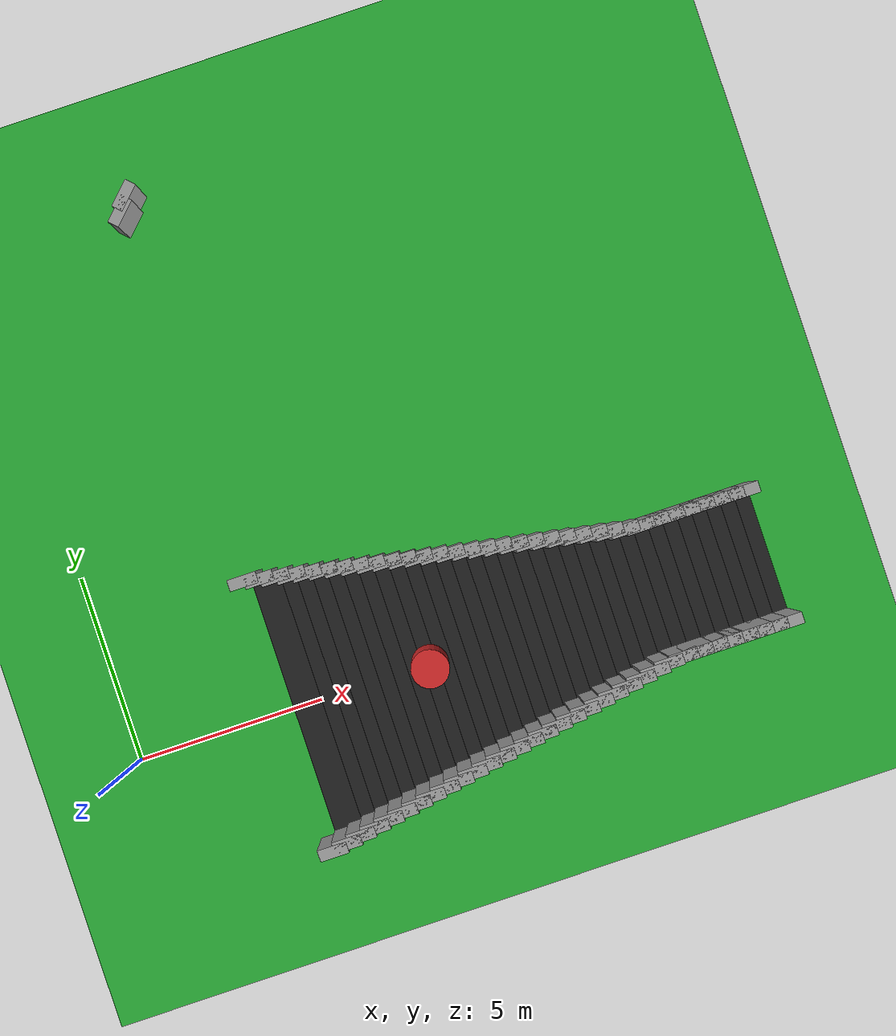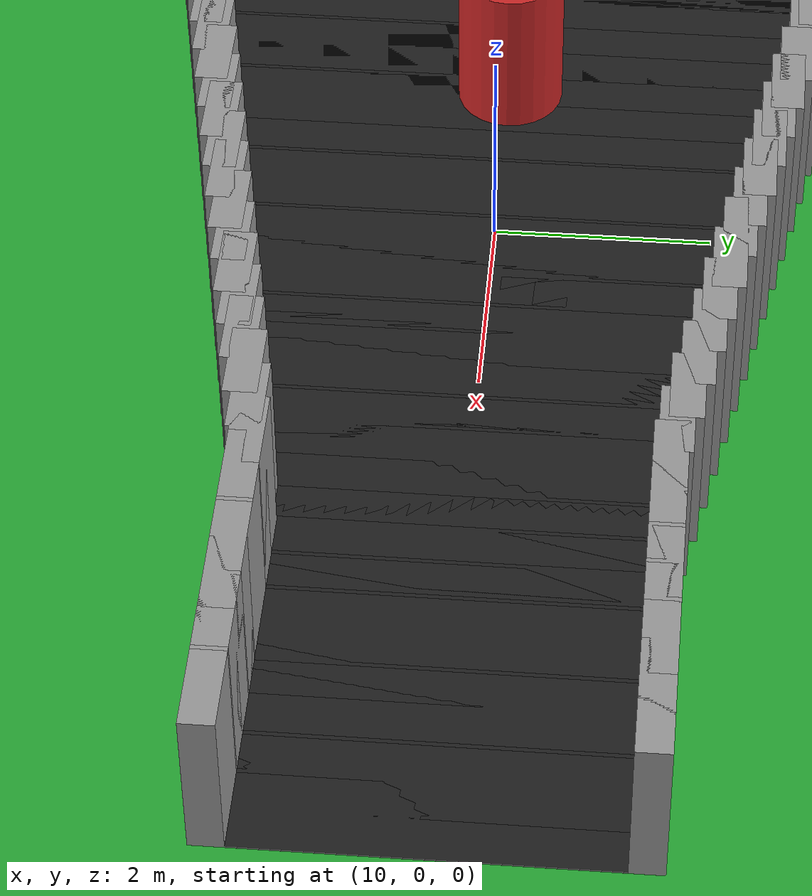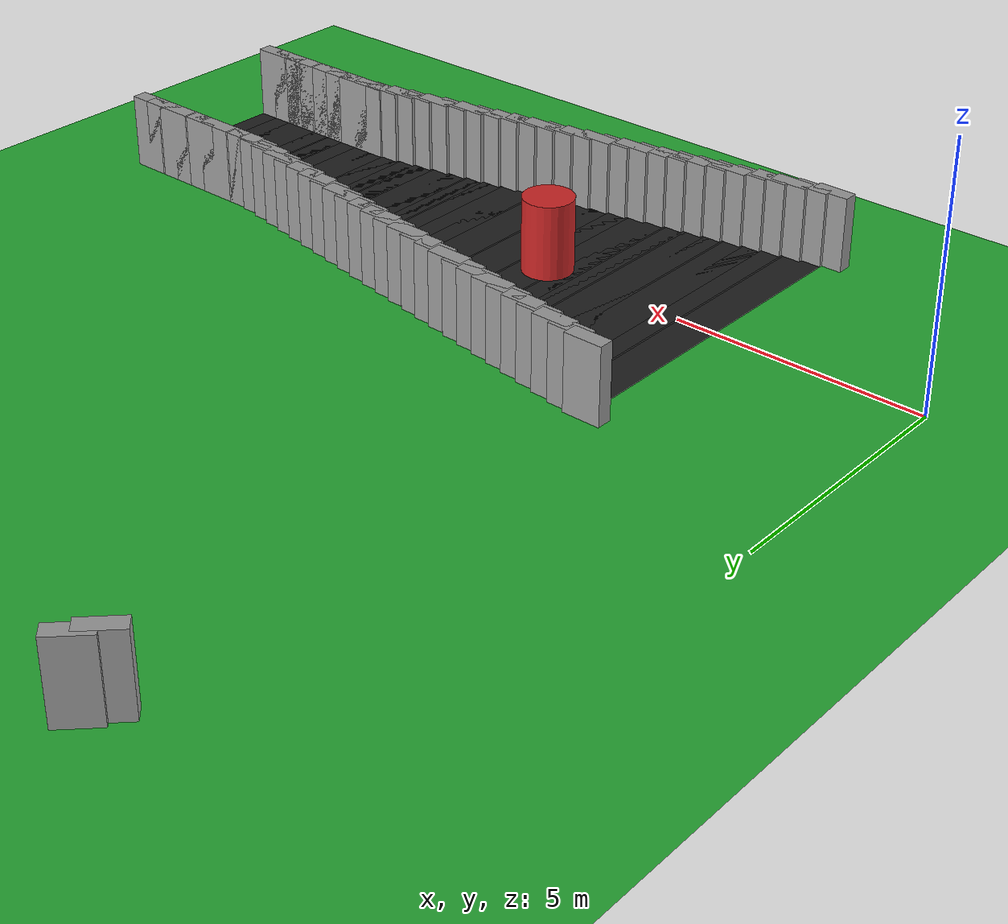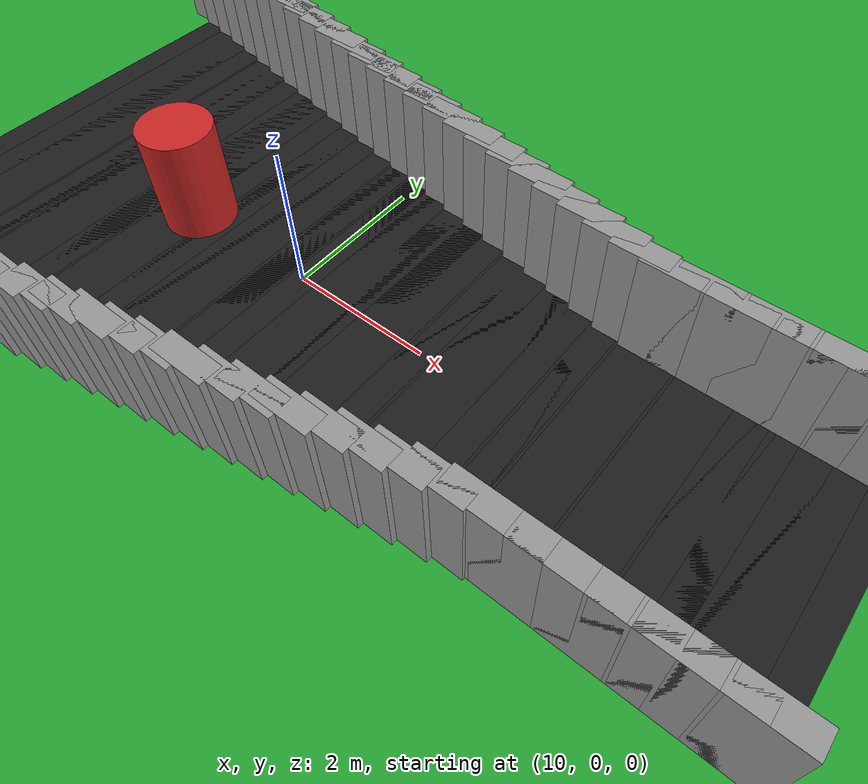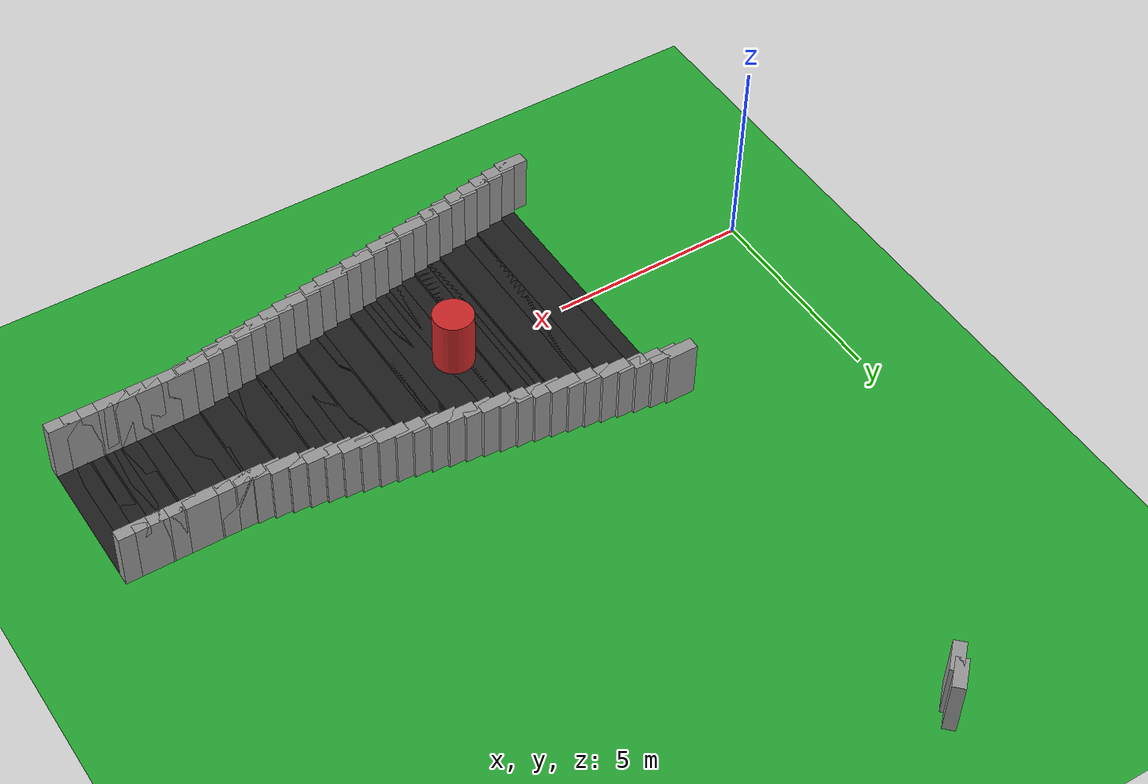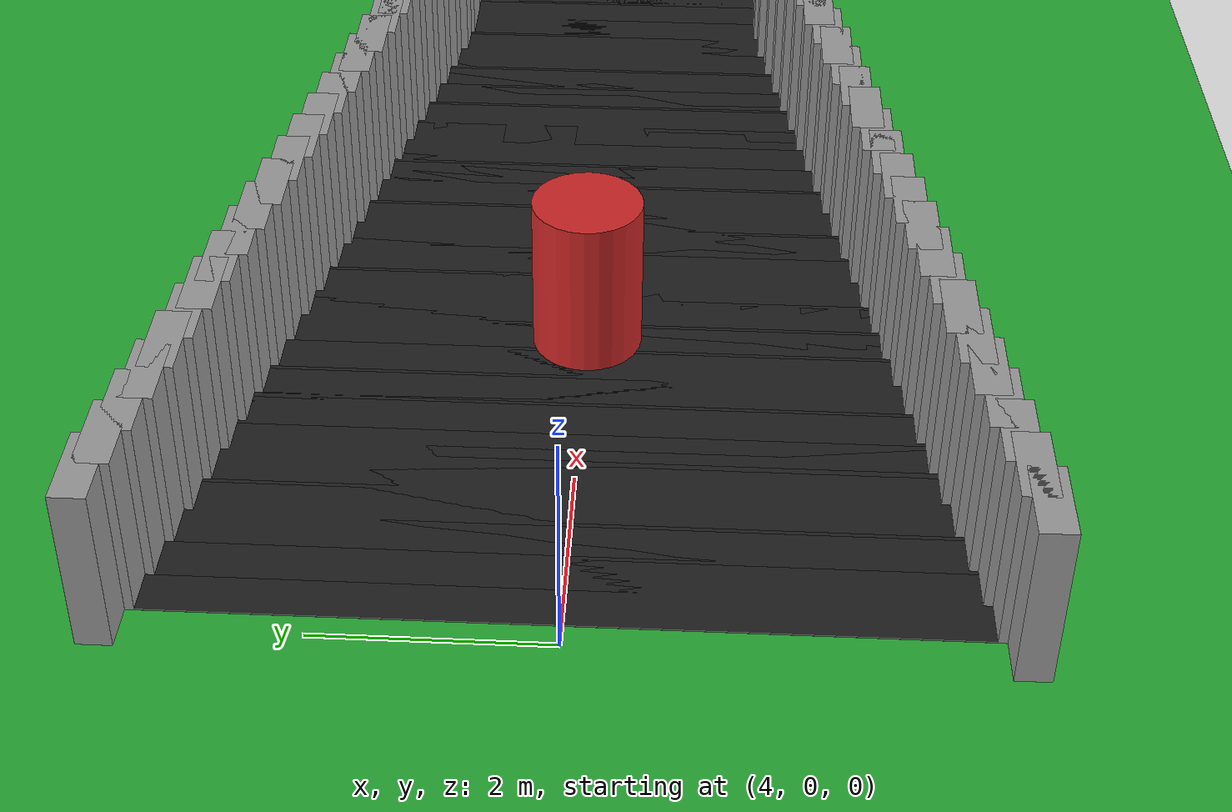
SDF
<sdf version="1.6">
 <world name="obstacle_taper">
  <include><uri>model://sun</uri></include>
  <model name="ground_plane">
   <static>true</static>
   <link name="link">
    <collision name="collision">
     <surface><friction><ode><mu>100</mu><mu2>50</mu2></ode></friction></surface>
     <geometry><plane><normal>0 0 1</normal><size>120 120</size></plane></geometry>
    </collision>
    <visual name="visual">
     <geometry><plane><normal>0 0 1</normal><size>120 120</size></plane></geometry>
     <material>
      <script><uri>file://media/materials/scripts/gazebo.material</uri><name>Gazebo/Green</name></script>
     </material>
    </visual>
   </link>
  </model>
  <model name="curbL_10">
   <static>true</static>
   <pose>4.200 3.612 0.750 0 0 0.00000</pose>
   <link name="link">
    <collision name="collision"><geometry><box><size>0.760 0.300 1.500</size></box></geometry></collision>
    <visual name="visual">
     <geometry><box><size>0.760 0.300 1.500</size></box></geometry>
     <material>
      <script><uri>file://media/materials/scripts/gazebo.material</uri><name>Gazebo/Grey</name></script>
     </material>
    </visual>
   </link>
  </model>
  <model name="curbR_10">
   <static>true</static>
   <pose>4.200 -3.612 0.750 0 0 0.00000</pose>
   <link name="link">
    <collision name="collision"><geometry><box><size>0.760 0.300 1.500</size></box></geometry></collision>
    <visual name="visual">
     <geometry><box><size>0.760 0.300 1.500</size></box></geometry>
     <material>
      <script><uri>file://media/materials/scripts/gazebo.material</uri><name>Gazebo/Grey</name></script>
     </material>
    </visual>
   </link>
  </model>
  <model name="asphalt_11">
   <static>true</static>
   <pose>4.600 0.000 0.005 0 0 0.00000</pose>
   <link name="link">
    <visual name="visual">
     <geometry><box><size>0.760 6.772 0.010</size></box></geometry>
     <material>
      <script><uri>file://media/materials/scripts/gazebo.material</uri><name>Gazebo/Black</name></script>
     </material>
    </visual>
   </link>
  </model>
  <model name="curbL_11">
   <static>true</static>
   <pose>4.600 3.536 0.750 0 0 0.00000</pose>
   <link name="link">
    <collision name="collision"><geometry><box><size>0.760 0.300 1.500</size></box></geometry></collision>
    <visual name="visual">
     <geometry><box><size>0.760 0.300 1.500</size></box></geometry>
     <material>
      <script><uri>file://media/materials/scripts/gazebo.material</uri><name>Gazebo/Grey</name></script>
     </material>
    </visual>
   </link>
  </model>
  <model name="curbR_11">
   <static>true</static>
   <pose>4.600 -3.536 0.750 0 0 0.00000</pose>
   <link name="link">
    <collision name="collision"><geometry><box><size>0.760 0.300 1.500</size></box></geometry></collision>
    <visual name="visual">
     <geometry><box><size>0.760 0.300 1.500</size></box></geometry>
     <material>
      <script><uri>file://media/materials/scripts/gazebo.material</uri><name>Gazebo/Grey</name></script>
     </material>
    </visual>
   </link>
  </model>
  <model name="asphalt_12">
   <static>true</static>
   <pose>5.000 0.000 0.005 0 0 0.00000</pose>
   <link name="link">
    <visual name="visual">
     <geometry><box><size>0.760 6.620 0.010</size></box></geometry>
     <material>
      <script><uri>file://media/materials/scripts/gazebo.material</uri><name>Gazebo/Black</name></script>
     </material>
    </visual>
   </link>
  </model>
  <model name="curbL_12">
   <static>true</static>
   <pose>5.000 3.460 0.750 0 0 0.00000</pose>
   <link name="link">
    <collision name="collision"><geometry><box><size>0.760 0.300 1.500</size></box></geometry></collision>
    <visual name="visual">
     <geometry><box><size>0.760 0.300 1.500</size></box></geometry>
     <material>
      <script><uri>file://media/materials/scripts/gazebo.material</uri><name>Gazebo/Grey</name></script>
     </material>
    </visual>
   </link>
  </model>
  <model name="curbR_12">
   <static>true</static>
   <pose>5.000 -3.460 0.750 0 0 0.00000</pose>
   <link name="link">
    <collision name="collision"><geometry><box><size>0.760 0.300 1.500</size></box></geometry></collision>
    <visual name="visual">
     <geometry><box><size>0.760 0.300 1.500</size></box></geometry>
     <material>
      <script><uri>file://media/materials/scripts/gazebo.material</uri><name>Gazebo/Grey</name></script>
     </material>
    </visual>
   </link>
  </model>
  <model name="asphalt_13">
   <static>true</static>
   <pose>5.400 0.000 0.005 0 0 0.00000</pose>
   <link name="link">
    <visual name="visual">
     <geometry><box><size>0.760 6.468 0.010</size></box></geometry>
     <material>
      <script><uri>file://media/materials/scripts/gazebo.material</uri><name>Gazebo/Black</name></script>
     </material>
    </visual>
   </link>
  </model>
  <model name="curbL_13">
   <static>true</static>
   <pose>5.400 3.384 0.750 0 0 0.00000</pose>
   <link name="link">
    <collision name="collision"><geometry><box><size>0.760 0.300 1.500</size></box></geometry></collision>
    <visual name="visual">
     <geometry><box><size>0.760 0.300 1.500</size></box></geometry>
     <material>
      <script><uri>file://media/materials/scripts/gazebo.material</uri><name>Gazebo/Grey</name></script>
     </material>
    </visual>
   </link>
  </model>
  <model name="curbR_13">
   <static>true</static>
   <pose>5.400 -3.384 0.750 0 0 0.00000</pose>
   <link name="link">
    <collision name="collision"><geometry><box><size>0.760 0.300 1.500</size></box></geometry></collision>
    <visual name="visual">
     <geometry><box><size>0.760 0.300 1.500</size></box></geometry>
     <material>
      <script><uri>file://media/materials/scripts/gazebo.material</uri><name>Gazebo/Grey</name></script>
     </material>
    </visual>
   </link>
  </model>
  <model name="asphalt_14">
   <static>true</static>
   <pose>5.800 0.000 0.005 0 0 0.00000</pose>
   <link name="link">
    <visual name="visual">
     <geometry><box><size>0.760 6.316 0.010</size></box></geometry>
     <material>
      <script><uri>file://media/materials/scripts/gazebo.material</uri><name>Gazebo/Black</name></script>
     </material>
    </visual>
   </link>
  </model>
  <model name="curbL_14">
   <static>true</static>
   <pose>5.800 3.308 0.750 0 0 0.00000</pose>
   <link name="link">
    <collision name="collision"><geometry><box><size>0.760 0.300 1.500</size></box></geometry></collision>
    <visual name="visual">
     <geometry><box><size>0.760 0.300 1.500</size></box></geometry>
     <material>
      <script><uri>file://media/materials/scripts/gazebo.material</uri><name>Gazebo/Grey</name></script>
     </material>
    </visual>
   </link>
  </model>
  <model name="curbR_14">
   <static>true</static>
   <pose>5.800 -3.308 0.750 0 0 0.00000</pose>
   <link name="link">
    <collision name="collision"><geometry><box><size>0.760 0.300 1.500</size></box></geometry></collision>
    <visual name="visual">
     <geometry><box><size>0.760 0.300 1.500</size></box></geometry>
     <material>
      <script><uri>file://media/materials/scripts/gazebo.material</uri><name>Gazebo/Grey</name></script>
     </material>
    </visual>
   </link>
  </model>
  <model name="asphalt_15">
   <static>true</static>
   <pose>6.200 0.000 0.005 0 0 0.00000</pose>
   <link name="link">
    <visual name="visual">
     <geometry><box><size>0.760 6.164 0.010</size></box></geometry>
     <material>
      <script><uri>file://media/materials/scripts/gazebo.material</uri><name>Gazebo/Black</name></script>
     </material>
    </visual>
   </link>
  </model>
  <model name="curbL_15">
   <static>true</static>
   <pose>6.200 3.232 0.750 0 0 0.00000</pose>
   <link name="link">
    <collision name="collision"><geometry><box><size>0.760 0.300 1.500</size></box></geometry></collision>
    <visual name="visual">
     <geometry><box><size>0.760 0.300 1.500</size></box></geometry>
     <material>
      <script><uri>file://media/materials/scripts/gazebo.material</uri><name>Gazebo/Grey</name></script>
     </material>
    </visual>
   </link>
  </model>
  <model name="curbR_15">
   <static>true</static>
   <pose>6.200 -3.232 0.750 0 0 0.00000</pose>
   <link name="link">
    <collision name="collision"><geometry><box><size>0.760 0.300 1.500</size></box></geometry></collision>
    <visual name="visual">
     <geometry><box><size>0.760 0.300 1.500</size></box></geometry>
     <material>
      <script><uri>file://media/materials/scripts/gazebo.material</uri><name>Gazebo/Grey</name></script>
     </material>
    </visual>
   </link>
  </model>
  <model name="asphalt_16">
   <static>true</static>
   <pose>6.600 0.000 0.005 0 0 0.00000</pose>
   <link name="link">
    <visual name="visual">
     <geometry><box><size>0.760 6.012 0.010</size></box></geometry>
     <material>
      <script><uri>file://media/materials/scripts/gazebo.material</uri><name>Gazebo/Black</name></script>
     </material>
    </visual>
   </link>
  </model>
  <model name="curbL_16">
   <static>true</static>
   <pose>6.600 3.156 0.750 0 0 0.00000</pose>
   <link name="link">
    <collision name="collision"><geometry><box><size>0.760 0.300 1.500</size></box></geometry></collision>
    <visual name="visual">
     <geometry><box><size>0.760 0.300 1.500</size></box></geometry>
     <material>
      <script><uri>file://media/materials/scripts/gazebo.material</uri><name>Gazebo/Grey</name></script>
     </material>
    </visual>
   </link>
  </model>
  <model name="curbR_16">
   <static>true</static>
   <pose>6.600 -3.156 0.750 0 0 0.00000</pose>
   <link name="link">
    <collision name="collision"><geometry><box><size>0.760 0.300 1.500</size></box></geometry></collision>
    <visual name="visual">
     <geometry><box><size>0.760 0.300 1.500</size></box></geometry>
     <material>
      <script><uri>file://media/materials/scripts/gazebo.material</uri><name>Gazebo/Grey</name></script>
     </material>
    </visual>
   </link>
  </model>
  <model name="asphalt_17">
   <static>true</static>
   <pose>7.000 0.000 0.005 0 0 0.00000</pose>
   <link name="link">
    <visual name="visual">
     <geometry><box><size>0.760 5.860 0.010</size></box></geometry>
     <material>
      <script><uri>file://media/materials/scripts/gazebo.material</uri><name>Gazebo/Black</name></script>
     </material>
    </visual>
   </link>
  </model>
  <model name="curbL_17">
   <static>true</static>
   <pose>7.000 3.080 0.750 0 0 0.00000</pose>
   <link name="link">
    <collision name="collision"><geometry><box><size>0.760 0.300 1.500</size></box></geometry></collision>
    <visual name="visual">
     <geometry><box><size>0.760 0.300 1.500</size></box></geometry>
     <material>
      <script><uri>file://media/materials/scripts/gazebo.material</uri><name>Gazebo/Grey</name></script>
     </material>
    </visual>
   </link>
  </model>
  <model name="curbR_17">
   <static>true</static>
   <pose>7.000 -3.080 0.750 0 0 0.00000</pose>
   <link name="link">
    <collision name="collision"><geometry><box><size>0.760 0.300 1.500</size></box></geometry></collision>
    <visual name="visual">
     <geometry><box><size>0.760 0.300 1.500</size></box></geometry>
     <material>
      <script><uri>file://media/materials/scripts/gazebo.material</uri><name>Gazebo/Grey</name></script>
     </material>
    </visual>
   </link>
  </model>
  <model name="asphalt_18">
   <static>true</static>
   <pose>7.400 0.000 0.005 0 0 0.00000</pose>
   <link name="link">
    <visual name="visual">
     <geometry><box><size>0.760 5.708 0.010</size></box></geometry>
     <material>
      <script><uri>file://media/materials/scripts/gazebo.material</uri><name>Gazebo/Black</name></script>
     </material>
    </visual>
   </link>
  </model>
  <model name="curbL_18">
   <static>true</static>
   <pose>7.400 3.004 0.750 0 0 0.00000</pose>
   <link name="link">
    <collision name="collision"><geometry><box><size>0.760 0.300 1.500</size></box></geometry></collision>
    <visual name="visual">
     <geometry><box><size>0.760 0.300 1.500</size></box></geometry>
     <material>
      <script><uri>file://media/materials/scripts/gazebo.material</uri><name>Gazebo/Grey</name></script>
     </material>
    </visual>
   </link>
  </model>
  <model name="curbR_18">
   <static>true</static>
   <pose>7.400 -3.004 0.750 0 0 0.00000</pose>
   <link name="link">
    <collision name="collision"><geometry><box><size>0.760 0.300 1.500</size></box></geometry></collision>
    <visual name="visual">
     <geometry><box><size>0.760 0.300 1.500</size></box></geometry>
     <material>
      <script><uri>file://media/materials/scripts/gazebo.material</uri><name>Gazebo/Grey</name></script>
     </material>
    </visual>
   </link>
  </model>
  <model name="asphalt_19">
   <static>true</static>
   <pose>7.800 0.000 0.005 0 0 0.00000</pose>
   <link name="link">
    <visual name="visual">
     <geometry><box><size>0.760 5.556 0.010</size></box></geometry>
     <material>
      <script><uri>file://media/materials/scripts/gazebo.material</uri><name>Gazebo/Black</name></script>
     </material>
    </visual>
   </link>
  </model>
  <model name="curbL_19">
   <static>true</static>
   <pose>7.800 2.928 0.750 0 0 0.00000</pose>
   <link name="link">
    <collision name="collision"><geometry><box><size>0.760 0.300 1.500</size></box></geometry></collision>
    <visual name="visual">
     <geometry><box><size>0.760 0.300 1.500</size></box></geometry>
     <material>
      <script><uri>file://media/materials/scripts/gazebo.material</uri><name>Gazebo/Grey</name></script>
     </material>
    </visual>
   </link>
  </model>
  <model name="curbR_19">
   <static>true</static>
   <pose>7.800 -2.928 0.750 0 0 0.00000</pose>
   <link name="link">
    <collision name="collision"><geometry><box><size>0.760 0.300 1.500</size></box></geometry></collision>
    <visual name="visual">
     <geometry><box><size>0.760 0.300 1.500</size></box></geometry>
     <material>
      <script><uri>file://media/materials/scripts/gazebo.material</uri><name>Gazebo/Grey</name></script>
     </material>
    </visual>
   </link>
  </model>
  <model name="asphalt_20">
   <static>true</static>
   <pose>8.200 0.000 0.005 0 0 0.00000</pose>
   <link name="link">
    <visual name="visual">
     <geometry><box><size>0.760 5.404 0.010</size></box></geometry>
     <material>
      <script><uri>file://media/materials/scripts/gazebo.material</uri><name>Gazebo/Black</name></script>
     </material>
    </visual>
   </link>
  </model>
  <model name="curbL_20">
   <static>true</static>
   <pose>8.200 2.852 0.750 0 0 0.00000</pose>
   <link name="link">
    <collision name="collision"><geometry><box><size>0.760 0.300 1.500</size></box></geometry></collision>
    <visual name="visual">
     <geometry><box><size>0.760 0.300 1.500</size></box></geometry>
     <material>
      <script><uri>file://media/materials/scripts/gazebo.material</uri><name>Gazebo/Grey</name></script>
     </material>
    </visual>
   </link>
  </model>
  <model name="curbR_20">
   <static>true</static>
   <pose>8.200 -2.852 0.750 0 0 0.00000</pose>
   <link name="link">
    <collision name="collision"><geometry><box><size>0.760 0.300 1.500</size></box></geometry></collision>
    <visual name="visual">
     <geometry><box><size>0.760 0.300 1.500</size></box></geometry>
     <material>
      <script><uri>file://media/materials/scripts/gazebo.material</uri><name>Gazebo/Grey</name></script>
     </material>
    </visual>
   </link>
  </model>
  <model name="asphalt_21">
   <static>true</static>
   <pose>8.600 0.000 0.005 0 0 0.00000</pose>
   <link name="link">
    <visual name="visual">
     <geometry><box><size>0.760 5.252 0.010</size></box></geometry>
     <material>
      <script><uri>file://media/materials/scripts/gazebo.material</uri><name>Gazebo/Black</name></script>
     </material>
    </visual>
   </link>
  </model>
  <model name="curbL_21">
   <static>true</static>
   <pose>8.600 2.776 0.750 0 0 0.00000</pose>
   <link name="link">
    <collision name="collision"><geometry><box><size>0.760 0.300 1.500</size></box></geometry></collision>
    <visual name="visual">
     <geometry><box><size>0.760 0.300 1.500</size></box></geometry>
     <material>
      <script><uri>file://media/materials/scripts/gazebo.material</uri><name>Gazebo/Grey</name></script>
     </material>
    </visual>
   </link>
  </model>
  <model name="curbR_21">
   <static>true</static>
   <pose>8.600 -2.776 0.750 0 0 0.00000</pose>
   <link name="link">
    <collision name="collision"><geometry><box><size>0.760 0.300 1.500</size></box></geometry></collision>
    <visual name="visual">
     <geometry><box><size>0.760 0.300 1.500</size></box></geometry>
     <material>
      <script><uri>file://media/materials/scripts/gazebo.material</uri><name>Gazebo/Grey</name></script>
     </material>
    </visual>
   </link>
  </model>
  <model name="asphalt_22">
   <static>true</static>
   <pose>9.000 0.000 0.005 0 0 0.00000</pose>
   <link name="link">
    <visual name="visual">
     <geometry><box><size>0.760 5.100 0.010</size></box></geometry>
     <material>
      <script><uri>file://media/materials/scripts/gazebo.material</uri><name>Gazebo/Black</name></script>
     </material>
    </visual>
   </link>
  </model>
  <model name="curbL_22">
   <static>true</static>
   <pose>9.000 2.700 0.750 0 0 0.00000</pose>
   <link name="link">
    <collision name="collision"><geometry><box><size>0.760 0.300 1.500</size></box></geometry></collision>
    <visual name="visual">
     <geometry><box><size>0.760 0.300 1.500</size></box></geometry>
     <material>
      <script><uri>file://media/materials/scripts/gazebo.material</uri><name>Gazebo/Grey</name></script>
     </material>
    </visual>
   </link>
  </model>
  <model name="curbR_22">
   <static>true</static>
   <pose>9.000 -2.700 0.750 0 0 0.00000</pose>
   <link name="link">
    <collision name="collision"><geometry><box><size>0.760 0.300 1.500</size></box></geometry></collision>
    <visual name="visual">
     <geometry><box><size>0.760 0.300 1.500</size></box></geometry>
     <material>
      <script><uri>file://media/materials/scripts/gazebo.material</uri><name>Gazebo/Grey</name></script>
     </material>
    </visual>
   </link>
  </model>
  <model name="asphalt_23">
   <static>true</static>
   <pose>9.400 0.000 0.005 0 0 0.00000</pose>
   <link name="link">
    <visual name="visual">
     <geometry><box><size>0.760 4.948 0.010</size></box></geometry>
     <material>
      <script><uri>file://media/materials/scripts/gazebo.material</uri><name>Gazebo/Black</name></script>
     </material>
    </visual>
   </link>
  </model>
  <model name="curbL_23">
   <static>true</static>
   <pose>9.400 2.624 0.750 0 0 0.00000</pose>
   <link name="link">
    <collision name="collision"><geometry><box><size>0.760 0.300 1.500</size></box></geometry></collision>
    <visual name="visual">
     <geometry><box><size>0.760 0.300 1.500</size></box></geometry>
     <material>
      <script><uri>file://media/materials/scripts/gazebo.material</uri><name>Gazebo/Grey</name></script>
     </material>
    </visual>
   </link>
  </model>
  <model name="curbR_23">
   <static>true</static>
   <pose>9.400 -2.624 0.750 0 0 0.00000</pose>
   <link name="link">
    <collision name="collision"><geometry><box><size>0.760 0.300 1.500</size></box></geometry></collision>
    <visual name="visual">
     <geometry><box><size>0.760 0.300 1.500</size></box></geometry>
     <material>
      <script><uri>file://media/materials/scripts/gazebo.material</uri><name>Gazebo/Grey</name></script>
     </material>
    </visual>
   </link>
  </model>
  <model name="asphalt_24">
   <static>true</static>
   <pose>9.800 0.000 0.005 0 0 0.00000</pose>
   <link name="link">
    <visual name="visual">
     <geometry><box><size>0.760 4.796 0.010</size></box></geometry>
     <material>
      <script><uri>file://media/materials/scripts/gazebo.material</uri><name>Gazebo/Black</name></script>
     </material>
    </visual>
   </link>
  </model>
  <model name="curbL_24">
   <static>true</static>
   <pose>9.800 2.548 0.750 0 0 0.00000</pose>
   <link name="link">
    <collision name="collision"><geometry><box><size>0.760 0.300 1.500</size></box></geometry></collision>
    <visual name="visual">
     <geometry><box><size>0.760 0.300 1.500</size></box></geometry>
     <material>
      <script><uri>file://media/materials/scripts/gazebo.material</uri><name>Gazebo/Grey</name></script>
     </material>
    </visual>
   </link>
  </model>
  <model name="curbR_24">
   <static>true</static>
   <pose>9.800 -2.548 0.750 0 0 0.00000</pose>
   <link name="link">
    <collision name="collision"><geometry><box><size>0.760 0.300 1.500</size></box></geometry></collision>
    <visual name="visual">
     <geometry><box><size>0.760 0.300 1.500</size></box></geometry>
     <material>
      <script><uri>file://media/materials/scripts/gazebo.material</uri><name>Gazebo/Grey</name></script>
     </material>
    </visual>
   </link>
  </model>
  <model name="asphalt_25">
   <static>true</static>
   <pose>10.200 0.000 0.005 0 0 0.00000</pose>
   <link name="link">
    <visual name="visual">
     <geometry><box><size>0.760 4.644 0.010</size></box></geometry>
     <material>
      <script><uri>file://media/materials/scripts/gazebo.material</uri><name>Gazebo/Black</name></script>
     </material>
    </visual>
   </link>
  </model>
  <model name="curbL_25">
   <static>true</static>
   <pose>10.200 2.472 0.750 0 0 0.00000</pose>
   <link name="link">
    <collision name="collision"><geometry><box><size>0.760 0.300 1.500</size></box></geometry></collision>
    <visual name="visual">
     <geometry><box><size>0.760 0.300 1.500</size></box></geometry>
     <material>
      <script><uri>file://media/materials/scripts/gazebo.material</uri><name>Gazebo/Grey</name></script>
     </material>
    </visual>
   </link>
  </model>
  <model name="curbR_25">
   <static>true</static>
   <pose>10.200 -2.472 0.750 0 0 0.00000</pose>
   <link name="link">
    <collision name="collision"><geometry><box><size>0.760 0.300 1.500</size></box></geometry></collision>
    <visual name="visual">
     <geometry><box><size>0.760 0.300 1.500</size></box></geometry>
     <material>
      <script><uri>file://media/materials/scripts/gazebo.material</uri><name>Gazebo/Grey</name></script>
     </material>
    </visual>
   </link>
  </model>
  <model name="asphalt_26">
   <static>true</static>
   <pose>10.600 0.000 0.005 0 0 0.00000</pose>
   <link name="link">
    <visual name="visual">
     <geometry><box><size>0.760 4.492 0.010</size></box></geometry>
     <material>
      <script><uri>file://media/materials/scripts/gazebo.material</uri><name>Gazebo/Black</name></script>
     </material>
    </visual>
   </link>
  </model>
  <model name="curbL_26">
   <static>true</static>
   <pose>10.600 2.396 0.750 0 0 0.00000</pose>
   <link name="link">
    <collision name="collision"><geometry><box><size>0.760 0.300 1.500</size></box></geometry></collision>
    <visual name="visual">
     <geometry><box><size>0.760 0.300 1.500</size></box></geometry>
     <material>
      <script><uri>file://media/materials/scripts/gazebo.material</uri><name>Gazebo/Grey</name></script>
     </material>
    </visual>
   </link>
  </model>
  <model name="curbR_26">
   <static>true</static>
   <pose>10.600 -2.396 0.750 0 0 0.00000</pose>
   <link name="link">
    <collision name="collision"><geometry><box><size>0.760 0.300 1.500</size></box></geometry></collision>
    <visual name="visual">
     <geometry><box><size>0.760 0.300 1.500</size></box></geometry>
     <material>
      <script><uri>file://media/materials/scripts/gazebo.material</uri><name>Gazebo/Grey</name></script>
     </material>
    </visual>
   </link>
  </model>
  <model name="asphalt_27">
   <static>true</static>
   <pose>11.000 0.000 0.005 0 0 0.00000</pose>
   <link name="link">
    <visual name="visual">
     <geometry><box><size>0.760 4.340 0.010</size></box></geometry>
     <material>
      <script><uri>file://media/materials/scripts/gazebo.material</uri><name>Gazebo/Black</name></script>
     </material>
    </visual>
   </link>
  </model>
  <model name="curbL_27">
   <static>true</static>
   <pose>11.000 2.320 0.750 0 0 0.00000</pose>
   <link name="link">
    <collision name="collision"><geometry><box><size>0.760 0.300 1.500</size></box></geometry></collision>
    <visual name="visual">
     <geometry><box><size>0.760 0.300 1.500</size></box></geometry>
     <material>
      <script><uri>file://media/materials/scripts/gazebo.material</uri><name>Gazebo/Grey</name></script>
     </material>
    </visual>
   </link>
  </model>
  <model name="curbR_27">
   <static>true</static>
   <pose>11.000 -2.320 0.750 0 0 0.00000</pose>
   <link name="link">
    <collision name="collision"><geometry><box><size>0.760 0.300 1.500</size></box></geometry></collision>
    <visual name="visual">
     <geometry><box><size>0.760 0.300 1.500</size></box></geometry>
     <material>
      <script><uri>file://media/materials/scripts/gazebo.material</uri><name>Gazebo/Grey</name></script>
     </material>
    </visual>
   </link>
  </model>
  <model name="asphalt_28">
   <static>true</static>
   <pose>11.400 0.000 0.005 0 0 0.00000</pose>
   <link name="link">
    <visual name="visual">
     <geometry><box><size>0.760 4.188 0.010</size></box></geometry>
     <material>
      <script><uri>file://media/materials/scripts/gazebo.material</uri><name>Gazebo/Black</name></script>
     </material>
    </visual>
   </link>
  </model>
  <model name="curbL_28">
   <static>true</static>
   <pose>11.400 2.244 0.750 0 0 0.00000</pose>
   <link name="link">
    <collision name="collision"><geometry><box><size>0.760 0.300 1.500</size></box></geometry></collision>
    <visual name="visual">
     <geometry><box><size>0.760 0.300 1.500</size></box></geometry>
     <material>
      <script><uri>file://media/materials/scripts/gazebo.material</uri><name>Gazebo/Grey</name></script>
     </material>
    </visual>
   </link>
  </model>
  <model name="curbR_28">
   <static>true</static>
   <pose>11.400 -2.244 0.750 0 0 0.00000</pose>
   <link name="link">
    <collision name="collision"><geometry><box><size>0.760 0.300 1.500</size></box></geometry></collision>
    <visual name="visual">
     <geometry><box><size>0.760 0.300 1.500</size></box></geometry>
     <material>
      <script><uri>file://media/materials/scripts/gazebo.material</uri><name>Gazebo/Grey</name></script>
     </material>
    </visual>
   </link>
  </model>
  <model name="asphalt_29">
   <static>true</static>
   <pose>11.800 0.000 0.005 0 0 0.00000</pose>
   <link name="link">
    <visual name="visual">
     <geometry><box><size>0.760 4.036 0.010</size></box></geometry>
     <material>
      <script><uri>file://media/materials/scripts/gazebo.material</uri><name>Gazebo/Black</name></script>
     </material>
    </visual>
   </link>
  </model>
  <model name="curbL_29">
   <static>true</static>
   <pose>11.800 2.168 0.750 0 0 0.00000</pose>
   <link name="link">
    <collision name="collision"><geometry><box><size>0.760 0.300 1.500</size></box></geometry></collision>
    <visual name="visual">
     <geometry><box><size>0.760 0.300 1.500</size></box></geometry>
     <material>
      <script><uri>file://media/materials/scripts/gazebo.material</uri><name>Gazebo/Grey</name></script>
     </material>
    </visual>
   </link>
  </model>
  <model name="curbR_29">
   <static>true</static>
   <pose>11.800 -2.168 0.750 0 0 0.00000</pose>
   <link name="link">
    <collision name="collision"><geometry><box><size>0.760 0.300 1.500</size></box></geometry></collision>
    <visual name="visual">
     <geometry><box><size>0.760 0.300 1.500</size></box></geometry>
     <material>
      <script><uri>file://media/materials/scripts/gazebo.material</uri><name>Gazebo/Grey</name></script>
     </material>
    </visual>
   </link>
  </model>
  <model name="asphalt_30">
   <static>true</static>
   <pose>12.200 0.000 0.005 0 0 0.00000</pose>
   <link name="link">
    <visual name="visual">
     <geometry><box><size>0.760 3.884 0.010</size></box></geometry>
     <material>
      <script><uri>file://media/materials/scripts/gazebo.material</uri><name>Gazebo/Black</name></script>
     </material>
    </visual>
   </link>
  </model>
  <model name="curbL_30">
   <static>true</static>
   <pose>12.200 2.092 0.750 0 0 0.00000</pose>
   <link name="link">
    <collision name="collision"><geometry><box><size>0.760 0.300 1.500</size></box></geometry></collision>
    <visual name="visual">
     <geometry><box><size>0.760 0.300 1.500</size></box></geometry>
     <material>
      <script><uri>file://media/materials/scripts/gazebo.material</uri><name>Gazebo/Grey</name></script>
     </material>
    </visual>
   </link>
  </model>
  <model name="curbR_30">
   <static>true</static>
   <pose>12.200 -2.092 0.750 0 0 0.00000</pose>
   <link name="link">
    <collision name="collision"><geometry><box><size>0.760 0.300 1.500</size></box></geometry></collision>
    <visual name="visual">
     <geometry><box><size>0.760 0.300 1.500</size></box></geometry>
     <material>
      <script><uri>file://media/materials/scripts/gazebo.material</uri><name>Gazebo/Grey</name></script>
     </material>
    </visual>
   </link>
  </model>
  <model name="asphalt_31">
   <static>true</static>
   <pose>12.600 0.000 0.005 0 0 0.00000</pose>
   <link name="link">
    <visual name="visual">
     <geometry><box><size>0.760 3.732 0.010</size></box></geometry>
     <material>
      <script><uri>file://media/materials/scripts/gazebo.material</uri><name>Gazebo/Black</name></script>
     </material>
    </visual>
   </link>
  </model>
  <model name="curbL_31">
   <static>true</static>
   <pose>12.600 2.016 0.750 0 0 0.00000</pose>
   <link name="link">
    <collision name="collision"><geometry><box><size>0.760 0.300 1.500</size></box></geometry></collision>
    <visual name="visual">
     <geometry><box><size>0.760 0.300 1.500</size></box></geometry>
     <material>
      <script><uri>file://media/materials/scripts/gazebo.material</uri><name>Gazebo/Grey</name></script>
     </material>
    </visual>
   </link>
  </model>
  <model name="curbR_31">
   <static>true</static>
   <pose>12.600 -2.016 0.750 0 0 0.00000</pose>
   <link name="link">
    <collision name="collision"><geometry><box><size>0.760 0.300 1.500</size></box></geometry></collision>
    <visual name="visual">
     <geometry><box><size>0.760 0.300 1.500</size></box></geometry>
     <material>
      <script><uri>file://media/materials/scripts/gazebo.material</uri><name>Gazebo/Grey</name></script>
     </material>
    </visual>
   </link>
  </model>
  <model name="asphalt_32">
   <static>true</static>
   <pose>13.000 0.000 0.005 0 0 0.00000</pose>
   <link name="link">
    <visual name="visual">
     <geometry><box><size>0.760 3.580 0.010</size></box></geometry>
     <material>
      <script><uri>file://media/materials/scripts/gazebo.material</uri><name>Gazebo/Black</name></script>
     </material>
    </visual>
   </link>
  </model>
  <model name="curbL_32">
   <static>true</static>
   <pose>13.000 1.940 0.750 0 0 0.00000</pose>
   <link name="link">
    <collision name="collision"><geometry><box><size>0.760 0.300 1.500</size></box></geometry></collision>
    <visual name="visual">
     <geometry><box><size>0.760 0.300 1.500</size></box></geometry>
     <material>
      <script><uri>file://media/materials/scripts/gazebo.material</uri><name>Gazebo/Grey</name></script>
     </material>
    </visual>
   </link>
  </model>
  <model name="curbR_32">
   <static>true</static>
   <pose>13.000 -1.940 0.750 0 0 0.00000</pose>
   <link name="link">
    <collision name="collision"><geometry><box><size>0.760 0.300 1.500</size></box></geometry></collision>
    <visual name="visual">
     <geometry><box><size>0.760 0.300 1.500</size></box></geometry>
     <material>
      <script><uri>file://media/materials/scripts/gazebo.material</uri><name>Gazebo/Grey</name></script>
     </material>
    </visual>
   </link>
  </model>
  <model name="asphalt_33">
   <static>true</static>
   <pose>13.400 0.000 0.005 0 0 0.00000</pose>
   <link name="link">
    <visual name="visual">
     <geometry><box><size>0.760 3.428 0.010</size></box></geometry>
     <material>
      <script><uri>file://media/materials/scripts/gazebo.material</uri><name>Gazebo/Black</name></script>
     </material>
    </visual>
   </link>
  </model>
  <model name="curbL_33">
   <static>true</static>
   <pose>13.400 1.864 0.750 0 0 0.00000</pose>
   <link name="link">
    <collision name="collision"><geometry><box><size>0.760 0.300 1.500</size></box></geometry></collision>
    <visual name="visual">
     <geometry><box><size>0.760 0.300 1.500</size></box></geometry>
     <material>
      <script><uri>file://media/materials/scripts/gazebo.material</uri><name>Gazebo/Grey</name></script>
     </material>
    </visual>
   </link>
  </model>
  <model name="curbR_33">
   <static>true</static>
   <pose>13.400 -1.864 0.750 0 0 0.00000</pose>
   <link name="link">
    <collision name="collision"><geometry><box><size>0.760 0.300 1.500</size></box></geometry></collision>
    <visual name="visual">
     <geometry><box><size>0.760 0.300 1.500</size></box></geometry>
     <material>
      <script><uri>file://media/materials/scripts/gazebo.material</uri><name>Gazebo/Grey</name></script>
     </material>
    </visual>
   </link>
  </model>
  <model name="asphalt_34">
   <static>true</static>
   <pose>13.800 0.000 0.005 0 0 0.00000</pose>
   <link name="link">
    <visual name="visual">
     <geometry><box><size>0.760 3.276 0.010</size></box></geometry>
     <material>
      <script><uri>file://media/materials/scripts/gazebo.material</uri><name>Gazebo/Black</name></script>
     </material>
    </visual>
   </link>
  </model>
  <model name="curbL_34">
   <static>true</static>
   <pose>13.800 1.788 0.750 0 0 0.00000</pose>
   <link name="link">
    <collision name="collision"><geometry><box><size>0.760 0.300 1.500</size></box></geometry></collision>
    <visual name="visual">
     <geometry><box><size>0.760 0.300 1.500</size></box></geometry>
     <material>
      <script><uri>file://media/materials/scripts/gazebo.material</uri><name>Gazebo/Grey</name></script>
     </material>
    </visual>
   </link>
  </model>
  <model name="curbR_34">
   <static>true</static>
   <pose>13.800 -1.788 0.750 0 0 0.00000</pose>
   <link name="link">
    <collision name="collision"><geometry><box><size>0.760 0.300 1.500</size></box></geometry></collision>
    <visual name="visual">
     <geometry><box><size>0.760 0.300 1.500</size></box></geometry>
     <material>
      <script><uri>file://media/materials/scripts/gazebo.material</uri><name>Gazebo/Grey</name></script>
     </material>
    </visual>
   </link>
  </model>
  <model name="asphalt_35">
   <static>true</static>
   <pose>14.200 0.000 0.005 0 0 0.00000</pose>
   <link name="link">
    <visual name="visual">
     <geometry><box><size>0.760 3.200 0.010</size></box></geometry>
     <material>
      <script><uri>file://media/materials/scripts/gazebo.material</uri><name>Gazebo/Black</name></script>
     </material>
    </visual>
   </link>
  </model>
  <model name="curbL_35">
   <static>true</static>
   <pose>14.200 1.750 0.750 0 0 0.00000</pose>
   <link name="link">
    <collision name="collision"><geometry><box><size>0.760 0.300 1.500</size></box></geometry></collision>
    <visual name="visual">
     <geometry><box><size>0.760 0.300 1.500</size></box></geometry>
     <material>
      <script><uri>file://media/materials/scripts/gazebo.material</uri><name>Gazebo/Grey</name></script>
     </material>
    </visual>
   </link>
  </model>
  <model name="curbR_35">
   <static>true</static>
   <pose>14.200 -1.750 0.750 0 0 0.00000</pose>
   <link name="link">
    <collision name="collision"><geometry><box><size>0.760 0.300 1.500</size></box></geometry></collision>
    <visual name="visual">
     <geometry><box><size>0.760 0.300 1.500</size></box></geometry>
     <material>
      <script><uri>file://media/materials/scripts/gazebo.material</uri><name>Gazebo/Grey</name></script>
     </material>
    </visual>
   </link>
  </model>
  <model name="asphalt_36">
   <static>true</static>
   <pose>14.600 0.000 0.005 0 0 0.00000</pose>
   <link name="link">
    <visual name="visual">
     <geometry><box><size>0.760 3.200 0.010</size></box></geometry>
     <material>
      <script><uri>file://media/materials/scripts/gazebo.material</uri><name>Gazebo/Black</name></script>
     </material>
    </visual>
   </link>
  </model>
  <model name="curbL_36">
   <static>true</static>
   <pose>14.600 1.750 0.750 0 0 0.00000</pose>
   <link name="link">
    <collision name="collision"><geometry><box><size>0.760 0.300 1.500</size></box></geometry></collision>
    <visual name="visual">
     <geometry><box><size>0.760 0.300 1.500</size></box></geometry>
     <material>
      <script><uri>file://media/materials/scripts/gazebo.material</uri><name>Gazebo/Grey</name></script>
     </material>
    </visual>
   </link>
  </model>
  <model name="curbR_36">
   <static>true</static>
   <pose>14.600 -1.750 0.750 0 0 0.00000</pose>
   <link name="link">
    <collision name="collision"><geometry><box><size>0.760 0.300 1.500</size></box></geometry></collision>
    <visual name="visual">
     <geometry><box><size>0.760 0.300 1.500</size></box></geometry>
     <material>
      <script><uri>file://media/materials/scripts/gazebo.material</uri><name>Gazebo/Grey</name></script>
     </material>
    </visual>
   </link>
  </model>
  <model name="asphalt_37">
   <static>true</static>
   <pose>15.000 0.000 0.005 0 0 0.00000</pose>
   <link name="link">
    <visual name="visual">
     <geometry><box><size>0.760 3.200 0.010</size></box></geometry>
     <material>
      <script><uri>file://media/materials/scripts/gazebo.material</uri><name>Gazebo/Black</name></script>
     </material>
    </visual>
   </link>
  </model>
  <model name="curbL_37">
   <static>true</static>
   <pose>15.000 1.750 0.750 0 0 0.00000</pose>
   <link name="link">
    <collision name="collision"><geometry><box><size>0.760 0.300 1.500</size></box></geometry></collision>
    <visual name="visual">
     <geometry><box><size>0.760 0.300 1.500</size></box></geometry>
     <material>
      <script><uri>file://media/materials/scripts/gazebo.material</uri><name>Gazebo/Grey</name></script>
     </material>
    </visual>
   </link>
  </model>
  <model name="curbR_37">
   <static>true</static>
   <pose>15.000 -1.750 0.750 0 0 0.00000</pose>
   <link name="link">
    <collision name="collision"><geometry><box><size>0.760 0.300 1.500</size></box></geometry></collision>
    <visual name="visual">
     <geometry><box><size>0.760 0.300 1.500</size></box></geometry>
     <material>
      <script><uri>file://media/materials/scripts/gazebo.material</uri><name>Gazebo/Grey</name></script>
     </material>
    </visual>
   </link>
  </model>
  <model name="asphalt_38">
   <static>true</static>
   <pose>15.400 0.000 0.005 0 0 0.00000</pose>
   <link name="link">
    <visual name="visual">
     <geometry><box><size>0.760 3.200 0.010</size></box></geometry>
     <material>
      <script><uri>file://media/materials/scripts/gazebo.material</uri><name>Gazebo/Black</name></script>
     </material>
    </visual>
   </link>
  </model>
  <model name="curbL_38">
   <static>true</static>
   <pose>15.400 1.750 0.750 0 0 0.00000</pose>
   <link name="link">
    <collision name="collision"><geometry><box><size>0.760 0.300 1.500</size></box></geometry></collision>
    <visual name="visual">
     <geometry><box><size>0.760 0.300 1.500</size></box></geometry>
     <material>
      <script><uri>file://media/materials/scripts/gazebo.material</uri><name>Gazebo/Grey</name></script>
     </material>
    </visual>
   </link>
  </model>
  <model name="curbR_38">
   <static>true</static>
   <pose>15.400 -1.750 0.750 0 0 0.00000</pose>
   <link name="link">
    <collision name="collision"><geometry><box><size>0.760 0.300 1.500</size></box></geometry></collision>
    <visual name="visual">
     <geometry><box><size>0.760 0.300 1.500</size></box></geometry>
     <material>
      <script><uri>file://media/materials/scripts/gazebo.material</uri><name>Gazebo/Grey</name></script>
     </material>
    </visual>
   </link>
  </model>
  <model name="asphalt_39">
   <static>true</static>
   <pose>15.800 0.000 0.005 0 0 0.00000</pose>
   <link name="link">
    <visual name="visual">
     <geometry><box><size>0.760 3.200 0.010</size></box></geometry>
     <material>
      <script><uri>file://media/materials/scripts/gazebo.material</uri><name>Gazebo/Black</name></script>
     </material>
    </visual>
   </link>
  </model>
  <model name="curbL_39">
   <static>true</static>
   <pose>15.800 1.750 0.750 0 0 0.00000</pose>
   <link name="link">
    <collision name="collision"><geometry><box><size>0.760 0.300 1.500</size></box></geometry></collision>
    <visual name="visual">
     <geometry><box><size>0.760 0.300 1.500</size></box></geometry>
     <material>
      <script><uri>file://media/materials/scripts/gazebo.material</uri><name>Gazebo/Grey</name></script>
     </material>
    </visual>
   </link>
  </model>
  <model name="curbR_39">
   <static>true</static>
   <pose>15.800 -1.750 0.750 0 0 0.00000</pose>
   <link name="link">
    <collision name="collision"><geometry><box><size>0.760 0.300 1.500</size></box></geometry></collision>
    <visual name="visual">
     <geometry><box><size>0.760 0.300 1.500</size></box></geometry>
     <material>
      <script><uri>file://media/materials/scripts/gazebo.material</uri><name>Gazebo/Grey</name></script>
     </material>
    </visual>
   </link>
  </model>
  <model name="asphalt_40">
   <static>true</static>
   <pose>16.200 0.000 0.005 0 0 0.00000</pose>
   <link name="link">
    <visual name="visual">
     <geometry><box><size>0.760 3.200 0.010</size></box></geometry>
     <material>
      <script><uri>file://media/materials/scripts/gazebo.material</uri><name>Gazebo/Black</name></script>
     </material>
    </visual>
   </link>
  </model>
  <model name="curbL_40">
   <static>true</static>
   <pose>16.200 1.750 0.750 0 0 0.00000</pose>
   <link name="link">
    <collision name="collision"><geometry><box><size>0.760 0.300 1.500</size></box></geometry></collision>
    <visual name="visual">
     <geometry><box><size>0.760 0.300 1.500</size></box></geometry>
     <material>
      <script><uri>file://media/materials/scripts/gazebo.material</uri><name>Gazebo/Grey</name></script>
     </material>
    </visual>
   </link>
  </model>
  <model name="curbR_40">
   <static>true</static>
   <pose>16.200 -1.750 0.750 0 0 0.00000</pose>
   <link name="link">
    <collision name="collision"><geometry><box><size>0.760 0.300 1.500</size></box></geometry></collision>
    <visual name="visual">
     <geometry><box><size>0.760 0.300 1.500</size></box></geometry>
     <material>
      <script><uri>file://media/materials/scripts/gazebo.material</uri><name>Gazebo/Grey</name></script>
     </material>
    </visual>
   </link>
  </model>
  <model name="asphalt_41">
   <static>true</static>
   <pose>16.600 0.000 0.005 0 0 0.00000</pose>
   <link name="link">
    <visual name="visual">
     <geometry><box><size>0.760 3.200 0.010</size></box></geometry>
     <material>
      <script><uri>file://media/materials/scripts/gazebo.material</uri><name>Gazebo/Black</name></script>
     </material>
    </visual>
   </link>
  </model>
  <model name="curbL_41">
   <static>true</static>
   <pose>16.600 1.750 0.750 0 0 0.00000</pose>
   <link name="link">
    <collision name="collision"><geometry><box><size>0.760 0.300 1.500</size></box></geometry></collision>
    <visual name="visual">
     <geometry><box><size>0.760 0.300 1.500</size></box></geometry>
     <material>
      <script><uri>file://media/materials/scripts/gazebo.material</uri><name>Gazebo/Grey</name></script>
     </material>
    </visual>
   </link>
  </model>
  <model name="curbR_41">
   <static>true</static>
   <pose>16.600 -1.750 0.750 0 0 0.00000</pose>
   <link name="link">
    <collision name="collision"><geometry><box><size>0.760 0.300 1.500</size></box></geometry></collision>
    <visual name="visual">
     <geometry><box><size>0.760 0.300 1.500</size></box></geometry>
     <material>
      <script><uri>file://media/materials/scripts/gazebo.material</uri><name>Gazebo/Grey</name></script>
     </material>
    </visual>
   </link>
  </model>
  <model name="asphalt_42">
   <static>true</static>
   <pose>17.000 0.000 0.005 0 0 0.00000</pose>
   <link name="link">
    <visual name="visual">
     <geometry><box><size>0.760 3.200 0.010</size></box></geometry>
     <material>
      <script><uri>file://media/materials/scripts/gazebo.material</uri><name>Gazebo/Black</name></script>
     </material>
    </visual>
   </link>
  </model>
  <model name="curbL_42">
   <static>true</static>
   <pose>17.000 1.750 0.750 0 0 0.00000</pose>
   <link name="link">
    <collision name="collision"><geometry><box><size>0.760 0.300 1.500</size></box></geometry></collision>
    <visual name="visual">
     <geometry><box><size>0.760 0.300 1.500</size></box></geometry>
     <material>
      <script><uri>file://media/materials/scripts/gazebo.material</uri><name>Gazebo/Grey</name></script>
     </material>
    </visual>
   </link>
  </model>
  <model name="curbR_42">
   <static>true</static>
   <pose>17.000 -1.750 0.750 0 0 0.00000</pose>
   <link name="link">
    <collision name="collision"><geometry><box><size>0.760 0.300 1.500</size></box></geometry></collision>
    <visual name="visual">
     <geometry><box><size>0.760 0.300 1.500</size></box></geometry>
     <material>
      <script><uri>file://media/materials/scripts/gazebo.material</uri><name>Gazebo/Grey</name></script>
     </material>
    </visual>
   </link>
  </model>
  <model name="curbL_213">
   <static>true</static>
   <pose>4.446 13.849 0.750 0 0 -2.35619</pose>
   <link name="link">
    <collision name="collision"><geometry><box><size>0.760 0.300 1.500</size></box></geometry></collision>
    <visual name="visual">
     <geometry><box><size>0.760 0.300 1.500</size></box></geometry>
     <material>
      <script><uri>file://media/materials/scripts/gazebo.material</uri><name>Gazebo/Grey</name></script>
     </material>
    </visual>
   </link>
  </model>
  <model name="curbL_214">
   <static>true</static>
   <pose>4.226 13.503 0.750 0 0 -2.35619</pose>
   <link name="link">
    <collision name="collision"><geometry><box><size>0.760 0.300 1.500</size></box></geometry></collision>
    <visual name="visual">
     <geometry><box><size>0.760 0.300 1.500</size></box></geometry>
     <material>
      <script><uri>file://media/materials/scripts/gazebo.material</uri><name>Gazebo/Grey</name></script>
     </material>
    </visual>
   </link>
  </model>
  <model name="obs_0">
   <static>true</static>
   <pose>8.000 0.000 0.750 0 0 0</pose>
   <link name="link">
    <collision name="collision">
     <geometry><cylinder><radius>0.500</radius><length>1.500</length></cylinder></geometry>
    </collision>
    <visual name="visual">
     <geometry><cylinder><radius>0.500</radius><length>1.500</length></cylinder></geometry>
     <material>
      <script><uri>file://media/materials/scripts/gazebo.material</uri><name>Gazebo/Red</name></script>
     </material>
    </visual>
   </link>
  </model>
 </world>
</sdf>
